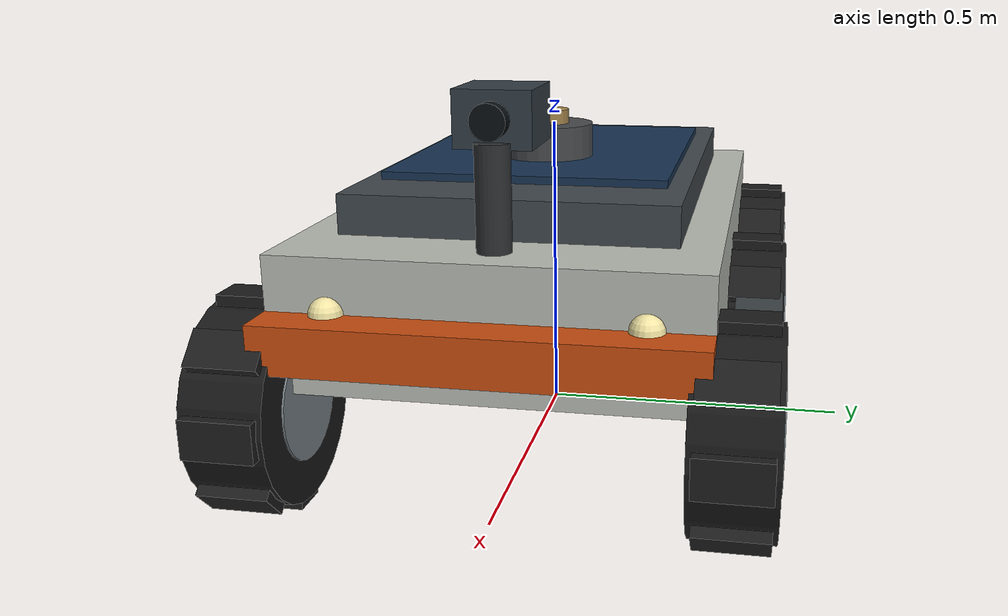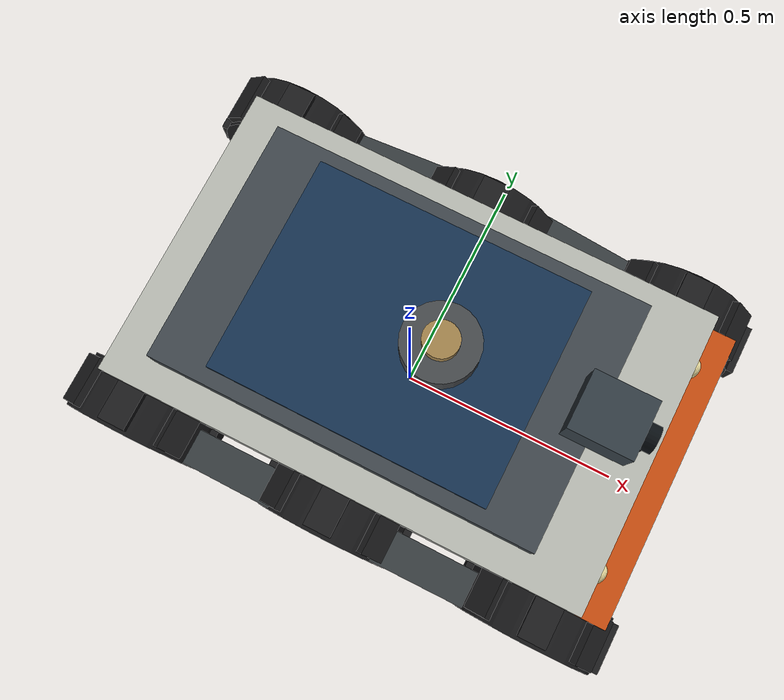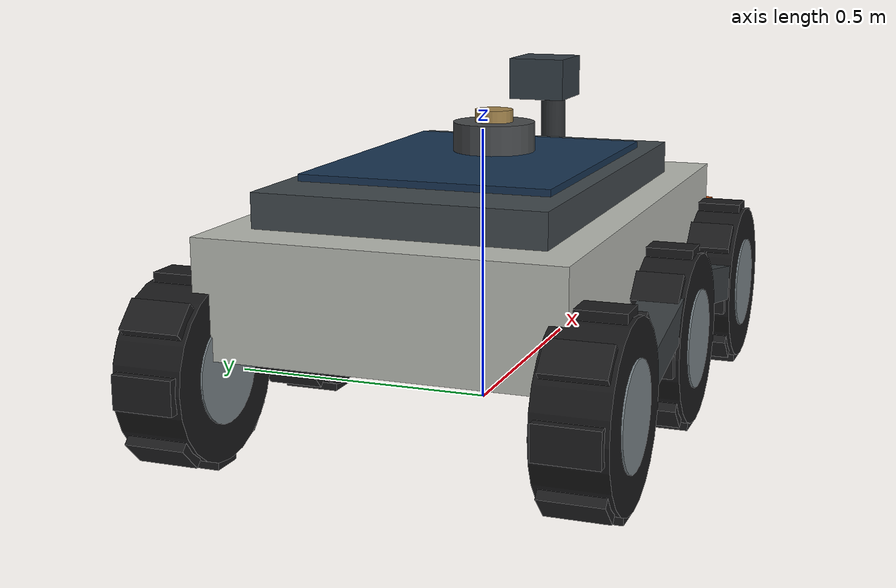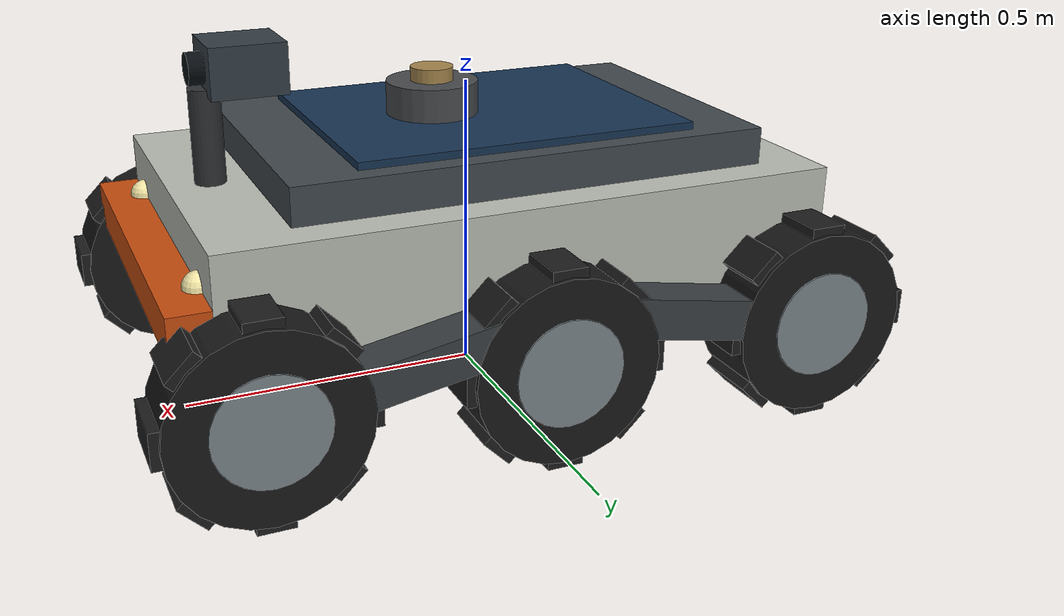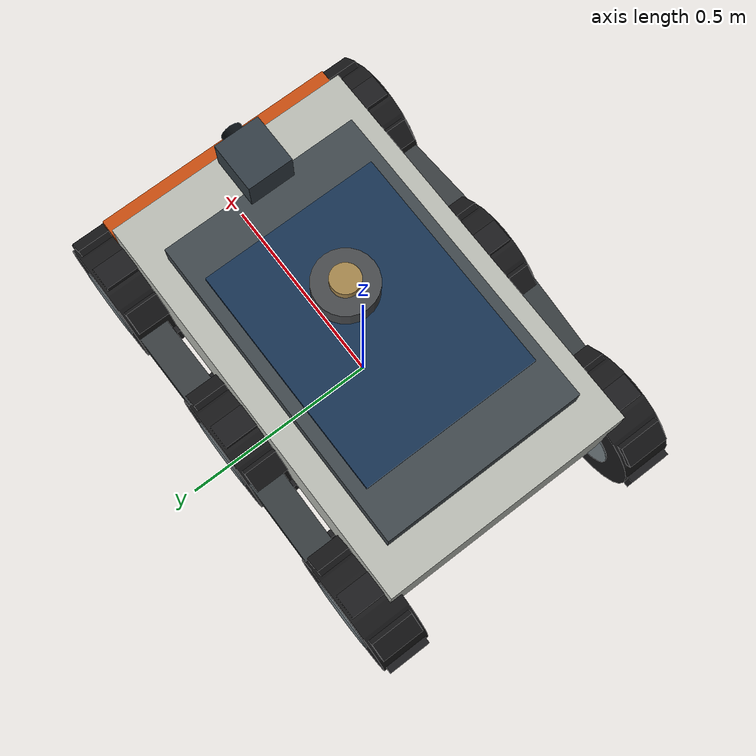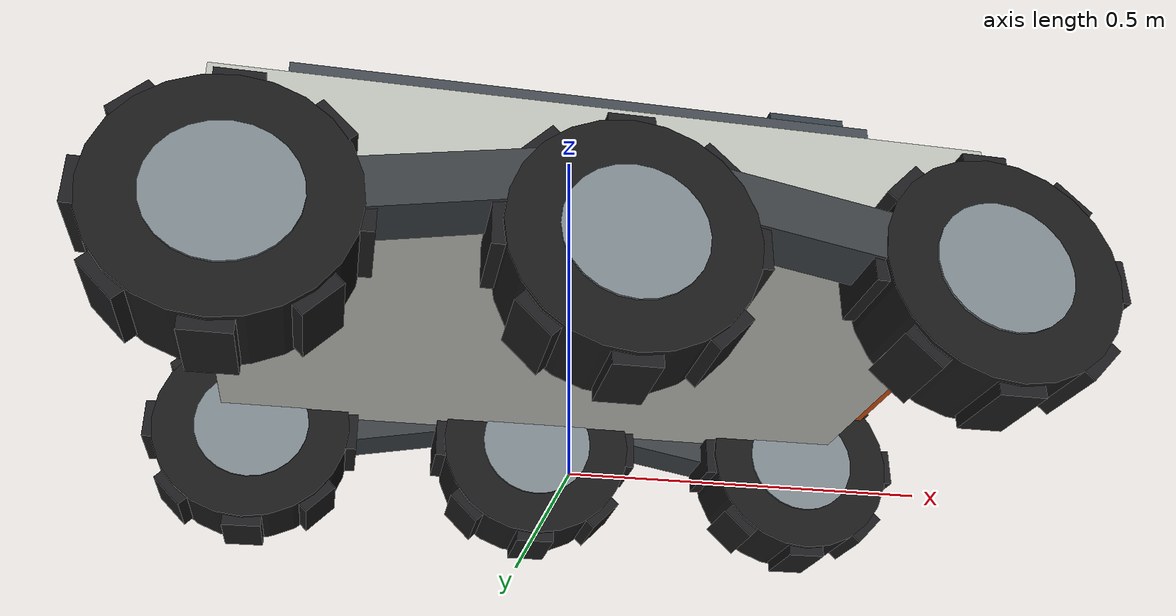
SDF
<?xml version="1.0"?>
<sdf version="1.8">
  <model name="lunabot_rover">
    <static>false</static>

    <link name="base_link">
      <!-- base_link origin is the chassis centre; base_footprint is at z = 0. -->
      <pose>0 0 0.28 0 0 0</pose>
      <inertial>
        <mass>64.8</mass>
        <inertia>
          <ixx>2.2918</ixx><ixy>0</ixy><ixz>0</ixz>
          <iyy>5.6160</iyy><iyz>0</iyz><izz>7.4760</izz>
        </inertia>
      </inertial>
      <collision name="chassis_collision">
        <geometry><box><size>1.00 0.62 0.20</size></box></geometry>
      </collision>
      <visual name="chassis_visual">
        <geometry><box><size>1.00 0.62 0.20</size></box></geometry>
        <material>
          <ambient>0.66 0.67 0.64 1</ambient>
          <diffuse>0.72 0.73 0.70 1</diffuse>
          <specular>0.12 0.12 0.12 1</specular>
        </material>
      </visual>
      <visual name="upper_deck_visual">
        <pose>-0.02 0 0.13 0 0 0</pose>
        <geometry><box><size>0.78 0.50 0.06</size></box></geometry>
        <material>
          <ambient>0.20 0.23 0.25 1</ambient>
          <diffuse>0.25 0.28 0.30 1</diffuse>
        </material>
      </visual>
      <visual name="lidar_mast_visual">
        <pose>0.06 0 0.14 0 0 0</pose>
        <geometry><cylinder><radius>0.035</radius><length>0.22</length></cylinder></geometry>
        <material>
          <ambient>0.54 0.43 0.24 1</ambient>
          <diffuse>0.64 0.52 0.30 1</diffuse>
        </material>
      </visual>
      <visual name="solar_panel_visual">
        <pose>-0.02 0 0.168 0 0 0</pose>
        <geometry><box><size>0.56 0.44 0.012</size></box></geometry>
        <material>
          <ambient>0.07 0.14 0.22 1</ambient>
          <diffuse>0.09 0.20 0.32 1</diffuse>
          <specular>0.28 0.34 0.40 1</specular>
        </material>
      </visual>
      <!-- Low-profile side rails suggest rocker-bogie hardware while the Phase 1
           chassis remains rigid; wheel groups remain manually driven. -->
      <visual name="left_front_rocker_arm_visual">
        <pose>0.225 0.36 -0.085 0 0.18 0</pose>
        <geometry><box><size>0.55 0.075 0.065</size></box></geometry>
        <material><ambient>0.17 0.19 0.20 1</ambient><diffuse>0.22 0.24 0.25 1</diffuse></material>
      </visual>
      <visual name="left_rear_bogie_arm_visual">
        <pose>-0.225 0.36 -0.085 0 -0.18 0</pose>
        <geometry><box><size>0.55 0.075 0.065</size></box></geometry>
        <material><ambient>0.17 0.19 0.20 1</ambient><diffuse>0.22 0.24 0.25 1</diffuse></material>
      </visual>
      <visual name="right_front_rocker_arm_visual">
        <pose>0.225 -0.36 -0.085 0 0.18 0</pose>
        <geometry><box><size>0.55 0.075 0.065</size></box></geometry>
        <material><ambient>0.17 0.19 0.20 1</ambient><diffuse>0.22 0.24 0.25 1</diffuse></material>
      </visual>
      <visual name="right_rear_bogie_arm_visual">
        <pose>-0.225 -0.36 -0.085 0 -0.18 0</pose>
        <geometry><box><size>0.55 0.075 0.065</size></box></geometry>
        <material><ambient>0.17 0.19 0.20 1</ambient><diffuse>0.22 0.24 0.25 1</diffuse></material>
      </visual>
      <visual name="front_bumper_visual">
        <pose>0.525 0 -0.015 0 0 0</pose>
        <geometry><box><size>0.08 0.62 0.07</size></box></geometry>
        <material>
          <ambient>0.55 0.20 0.04 1</ambient>
          <diffuse>0.78 0.30 0.06 1</diffuse>
        </material>
      </visual>
      <visual name="front_camera_mast_visual">
        <pose>0.43 0 0.14 0 0 0</pose>
        <geometry><cylinder><radius>0.025</radius><length>0.22</length></cylinder></geometry>
        <material><ambient>0.12 0.13 0.14 1</ambient><diffuse>0.18 0.19 0.20 1</diffuse></material>
      </visual>
      <visual name="left_headlamp_visual">
        <pose>0.50 0.22 0.02 0 0 0</pose>
        <geometry><sphere><radius>0.025</radius></sphere></geometry>
        <material><ambient>0.85 0.80 0.55 1</ambient><diffuse>0.95 0.90 0.65 1</diffuse></material>
      </visual>
      <visual name="right_headlamp_visual">
        <pose>0.50 -0.22 0.02 0 0 0</pose>
        <geometry><sphere><radius>0.025</radius></sphere></geometry>
        <material><ambient>0.85 0.80 0.55 1</ambient><diffuse>0.95 0.90 0.65 1</diffuse></material>
      </visual>
    </link>

    <!-- Six real wheel links: three per side; front/rear rails are visual
         rocker-bogie-inspired hardware, with all six wheels in the drive group. -->
    <link name="left_wheel">
      <pose>0.00 0.34 0.15 1.57079632679 0 0</pose>
      <inertial>
        <mass>2.5</mass>
        <inertia><ixx>0.0171</ixx><ixy>0</ixy><ixz>0</ixz><iyy>0.0171</iyy><iyz>0</iyz><izz>0.0281</izz></inertia>
      </inertial>
      <collision name="wheel_collision">
        <geometry><cylinder><radius>0.15</radius><length>0.12</length></cylinder></geometry>
        <surface><friction><ode><mu>1.5</mu><mu2>1.5</mu2><slip1>0.01</slip1><slip2>0.01</slip2></ode></friction></surface>
      </collision>
      <visual name="wheel_tire_visual">
        <geometry><cylinder><radius>0.15</radius><length>0.12</length></cylinder></geometry>
        <material><ambient>0.055 0.055 0.060 1</ambient><diffuse>0.095 0.095 0.100 1</diffuse></material>
      </visual>
      <visual name="wheel_hub_visual">
        <geometry><cylinder><radius>0.087</radius><length>0.126</length></cylinder></geometry>
        <material><ambient>0.34 0.37 0.39 1</ambient><diffuse>0.48 0.52 0.54 1</diffuse><specular>0.25 0.25 0.25 1</specular></material>
      </visual>
      <visual name="left_wheel_tread_lug_0">
        <pose>0.14500 0.00000 0 0 0 0.00000</pose>
        <geometry><box><size>0.035 0.058 0.105</size></box></geometry>
        <material><ambient>0.07 0.07 0.075 1</ambient><diffuse>0.11 0.11 0.115 1</diffuse></material>
      </visual>
      <visual name="left_wheel_tread_lug_1">
        <pose>0.10253 0.10253 0 0 0 0.78540</pose>
        <geometry><box><size>0.035 0.058 0.105</size></box></geometry>
        <material><ambient>0.07 0.07 0.075 1</ambient><diffuse>0.11 0.11 0.115 1</diffuse></material>
      </visual>
      <visual name="left_wheel_tread_lug_2">
        <pose>0.00000 0.14500 0 0 0 1.57080</pose>
        <geometry><box><size>0.035 0.058 0.105</size></box></geometry>
        <material><ambient>0.07 0.07 0.075 1</ambient><diffuse>0.11 0.11 0.115 1</diffuse></material>
      </visual>
      <visual name="left_wheel_tread_lug_3">
        <pose>-0.10253 0.10253 0 0 0 2.35619</pose>
        <geometry><box><size>0.035 0.058 0.105</size></box></geometry>
        <material><ambient>0.07 0.07 0.075 1</ambient><diffuse>0.11 0.11 0.115 1</diffuse></material>
      </visual>
      <visual name="left_wheel_tread_lug_4">
        <pose>-0.14500 0.00000 0 0 0 3.14159</pose>
        <geometry><box><size>0.035 0.058 0.105</size></box></geometry>
        <material><ambient>0.07 0.07 0.075 1</ambient><diffuse>0.11 0.11 0.115 1</diffuse></material>
      </visual>
      <visual name="left_wheel_tread_lug_5">
        <pose>-0.10253 -0.10253 0 0 0 3.92699</pose>
        <geometry><box><size>0.035 0.058 0.105</size></box></geometry>
        <material><ambient>0.07 0.07 0.075 1</ambient><diffuse>0.11 0.11 0.115 1</diffuse></material>
      </visual>
      <visual name="left_wheel_tread_lug_6">
        <pose>-0.00000 -0.14500 0 0 0 4.71239</pose>
        <geometry><box><size>0.035 0.058 0.105</size></box></geometry>
        <material><ambient>0.07 0.07 0.075 1</ambient><diffuse>0.11 0.11 0.115 1</diffuse></material>
      </visual>
      <visual name="left_wheel_tread_lug_7">
        <pose>0.10253 -0.10253 0 0 0 5.49779</pose>
        <geometry><box><size>0.035 0.058 0.105</size></box></geometry>
        <material><ambient>0.07 0.07 0.075 1</ambient><diffuse>0.11 0.11 0.115 1</diffuse></material>
      </visual>
    </link>
    <link name="left_front_wheel">
      <pose>0.45 0.34 0.15 1.57079632679 0 0</pose>
      <inertial>
        <mass>2.5</mass>
        <inertia><ixx>0.0171</ixx><ixy>0</ixy><ixz>0</ixz><iyy>0.0171</iyy><iyz>0</iyz><izz>0.0281</izz></inertia>
      </inertial>
      <collision name="wheel_collision">
        <geometry><cylinder><radius>0.15</radius><length>0.12</length></cylinder></geometry>
        <surface><friction><ode><mu>1.5</mu><mu2>1.5</mu2><slip1>0.01</slip1><slip2>0.01</slip2></ode></friction></surface>
      </collision>
      <visual name="wheel_tire_visual">
        <geometry><cylinder><radius>0.15</radius><length>0.12</length></cylinder></geometry>
        <material><ambient>0.055 0.055 0.060 1</ambient><diffuse>0.095 0.095 0.100 1</diffuse></material>
      </visual>
      <visual name="wheel_hub_visual">
        <geometry><cylinder><radius>0.087</radius><length>0.126</length></cylinder></geometry>
        <material><ambient>0.34 0.37 0.39 1</ambient><diffuse>0.48 0.52 0.54 1</diffuse><specular>0.25 0.25 0.25 1</specular></material>
      </visual>
      <visual name="left_front_wheel_tread_lug_0">
        <pose>0.14500 0.00000 0 0 0 0.00000</pose>
        <geometry><box><size>0.035 0.058 0.105</size></box></geometry>
        <material><ambient>0.07 0.07 0.075 1</ambient><diffuse>0.11 0.11 0.115 1</diffuse></material>
      </visual>
      <visual name="left_front_wheel_tread_lug_1">
        <pose>0.10253 0.10253 0 0 0 0.78540</pose>
        <geometry><box><size>0.035 0.058 0.105</size></box></geometry>
        <material><ambient>0.07 0.07 0.075 1</ambient><diffuse>0.11 0.11 0.115 1</diffuse></material>
      </visual>
      <visual name="left_front_wheel_tread_lug_2">
        <pose>0.00000 0.14500 0 0 0 1.57080</pose>
        <geometry><box><size>0.035 0.058 0.105</size></box></geometry>
        <material><ambient>0.07 0.07 0.075 1</ambient><diffuse>0.11 0.11 0.115 1</diffuse></material>
      </visual>
      <visual name="left_front_wheel_tread_lug_3">
        <pose>-0.10253 0.10253 0 0 0 2.35619</pose>
        <geometry><box><size>0.035 0.058 0.105</size></box></geometry>
        <material><ambient>0.07 0.07 0.075 1</ambient><diffuse>0.11 0.11 0.115 1</diffuse></material>
      </visual>
      <visual name="left_front_wheel_tread_lug_4">
        <pose>-0.14500 0.00000 0 0 0 3.14159</pose>
        <geometry><box><size>0.035 0.058 0.105</size></box></geometry>
        <material><ambient>0.07 0.07 0.075 1</ambient><diffuse>0.11 0.11 0.115 1</diffuse></material>
      </visual>
      <visual name="left_front_wheel_tread_lug_5">
        <pose>-0.10253 -0.10253 0 0 0 3.92699</pose>
        <geometry><box><size>0.035 0.058 0.105</size></box></geometry>
        <material><ambient>0.07 0.07 0.075 1</ambient><diffuse>0.11 0.11 0.115 1</diffuse></material>
      </visual>
      <visual name="left_front_wheel_tread_lug_6">
        <pose>-0.00000 -0.14500 0 0 0 4.71239</pose>
        <geometry><box><size>0.035 0.058 0.105</size></box></geometry>
        <material><ambient>0.07 0.07 0.075 1</ambient><diffuse>0.11 0.11 0.115 1</diffuse></material>
      </visual>
      <visual name="left_front_wheel_tread_lug_7">
        <pose>0.10253 -0.10253 0 0 0 5.49779</pose>
        <geometry><box><size>0.035 0.058 0.105</size></box></geometry>
        <material><ambient>0.07 0.07 0.075 1</ambient><diffuse>0.11 0.11 0.115 1</diffuse></material>
      </visual>
    </link>
    <link name="left_rear_wheel">
      <pose>-0.45 0.34 0.15 1.57079632679 0 0</pose>
      <inertial>
        <mass>2.5</mass>
        <inertia><ixx>0.0171</ixx><ixy>0</ixy><ixz>0</ixz><iyy>0.0171</iyy><iyz>0</iyz><izz>0.0281</izz></inertia>
      </inertial>
      <collision name="wheel_collision">
        <geometry><cylinder><radius>0.15</radius><length>0.12</length></cylinder></geometry>
        <surface><friction><ode><mu>1.5</mu><mu2>1.5</mu2><slip1>0.01</slip1><slip2>0.01</slip2></ode></friction></surface>
      </collision>
      <visual name="wheel_tire_visual">
        <geometry><cylinder><radius>0.15</radius><length>0.12</length></cylinder></geometry>
        <material><ambient>0.055 0.055 0.060 1</ambient><diffuse>0.095 0.095 0.100 1</diffuse></material>
      </visual>
      <visual name="wheel_hub_visual">
        <geometry><cylinder><radius>0.087</radius><length>0.126</length></cylinder></geometry>
        <material><ambient>0.34 0.37 0.39 1</ambient><diffuse>0.48 0.52 0.54 1</diffuse><specular>0.25 0.25 0.25 1</specular></material>
      </visual>
      <visual name="left_rear_wheel_tread_lug_0">
        <pose>0.14500 0.00000 0 0 0 0.00000</pose>
        <geometry><box><size>0.035 0.058 0.105</size></box></geometry>
        <material><ambient>0.07 0.07 0.075 1</ambient><diffuse>0.11 0.11 0.115 1</diffuse></material>
      </visual>
      <visual name="left_rear_wheel_tread_lug_1">
        <pose>0.10253 0.10253 0 0 0 0.78540</pose>
        <geometry><box><size>0.035 0.058 0.105</size></box></geometry>
        <material><ambient>0.07 0.07 0.075 1</ambient><diffuse>0.11 0.11 0.115 1</diffuse></material>
      </visual>
      <visual name="left_rear_wheel_tread_lug_2">
        <pose>0.00000 0.14500 0 0 0 1.57080</pose>
        <geometry><box><size>0.035 0.058 0.105</size></box></geometry>
        <material><ambient>0.07 0.07 0.075 1</ambient><diffuse>0.11 0.11 0.115 1</diffuse></material>
      </visual>
      <visual name="left_rear_wheel_tread_lug_3">
        <pose>-0.10253 0.10253 0 0 0 2.35619</pose>
        <geometry><box><size>0.035 0.058 0.105</size></box></geometry>
        <material><ambient>0.07 0.07 0.075 1</ambient><diffuse>0.11 0.11 0.115 1</diffuse></material>
      </visual>
      <visual name="left_rear_wheel_tread_lug_4">
        <pose>-0.14500 0.00000 0 0 0 3.14159</pose>
        <geometry><box><size>0.035 0.058 0.105</size></box></geometry>
        <material><ambient>0.07 0.07 0.075 1</ambient><diffuse>0.11 0.11 0.115 1</diffuse></material>
      </visual>
      <visual name="left_rear_wheel_tread_lug_5">
        <pose>-0.10253 -0.10253 0 0 0 3.92699</pose>
        <geometry><box><size>0.035 0.058 0.105</size></box></geometry>
        <material><ambient>0.07 0.07 0.075 1</ambient><diffuse>0.11 0.11 0.115 1</diffuse></material>
      </visual>
      <visual name="left_rear_wheel_tread_lug_6">
        <pose>-0.00000 -0.14500 0 0 0 4.71239</pose>
        <geometry><box><size>0.035 0.058 0.105</size></box></geometry>
        <material><ambient>0.07 0.07 0.075 1</ambient><diffuse>0.11 0.11 0.115 1</diffuse></material>
      </visual>
      <visual name="left_rear_wheel_tread_lug_7">
        <pose>0.10253 -0.10253 0 0 0 5.49779</pose>
        <geometry><box><size>0.035 0.058 0.105</size></box></geometry>
        <material><ambient>0.07 0.07 0.075 1</ambient><diffuse>0.11 0.11 0.115 1</diffuse></material>
      </visual>
    </link>
    <link name="right_wheel">
      <pose>0.00 -0.34 0.15 1.57079632679 0 0</pose>
      <inertial>
        <mass>2.5</mass>
        <inertia><ixx>0.0171</ixx><ixy>0</ixy><ixz>0</ixz><iyy>0.0171</iyy><iyz>0</iyz><izz>0.0281</izz></inertia>
      </inertial>
      <collision name="wheel_collision">
        <geometry><cylinder><radius>0.15</radius><length>0.12</length></cylinder></geometry>
        <surface><friction><ode><mu>1.5</mu><mu2>1.5</mu2><slip1>0.01</slip1><slip2>0.01</slip2></ode></friction></surface>
      </collision>
      <visual name="wheel_tire_visual">
        <geometry><cylinder><radius>0.15</radius><length>0.12</length></cylinder></geometry>
        <material><ambient>0.055 0.055 0.060 1</ambient><diffuse>0.095 0.095 0.100 1</diffuse></material>
      </visual>
      <visual name="wheel_hub_visual">
        <geometry><cylinder><radius>0.087</radius><length>0.126</length></cylinder></geometry>
        <material><ambient>0.34 0.37 0.39 1</ambient><diffuse>0.48 0.52 0.54 1</diffuse><specular>0.25 0.25 0.25 1</specular></material>
      </visual>
      <visual name="right_wheel_tread_lug_0">
        <pose>0.14500 0.00000 0 0 0 0.00000</pose>
        <geometry><box><size>0.035 0.058 0.105</size></box></geometry>
        <material><ambient>0.07 0.07 0.075 1</ambient><diffuse>0.11 0.11 0.115 1</diffuse></material>
      </visual>
      <visual name="right_wheel_tread_lug_1">
        <pose>0.10253 0.10253 0 0 0 0.78540</pose>
        <geometry><box><size>0.035 0.058 0.105</size></box></geometry>
        <material><ambient>0.07 0.07 0.075 1</ambient><diffuse>0.11 0.11 0.115 1</diffuse></material>
      </visual>
      <visual name="right_wheel_tread_lug_2">
        <pose>0.00000 0.14500 0 0 0 1.57080</pose>
        <geometry><box><size>0.035 0.058 0.105</size></box></geometry>
        <material><ambient>0.07 0.07 0.075 1</ambient><diffuse>0.11 0.11 0.115 1</diffuse></material>
      </visual>
      <visual name="right_wheel_tread_lug_3">
        <pose>-0.10253 0.10253 0 0 0 2.35619</pose>
        <geometry><box><size>0.035 0.058 0.105</size></box></geometry>
        <material><ambient>0.07 0.07 0.075 1</ambient><diffuse>0.11 0.11 0.115 1</diffuse></material>
      </visual>
      <visual name="right_wheel_tread_lug_4">
        <pose>-0.14500 0.00000 0 0 0 3.14159</pose>
        <geometry><box><size>0.035 0.058 0.105</size></box></geometry>
        <material><ambient>0.07 0.07 0.075 1</ambient><diffuse>0.11 0.11 0.115 1</diffuse></material>
      </visual>
      <visual name="right_wheel_tread_lug_5">
        <pose>-0.10253 -0.10253 0 0 0 3.92699</pose>
        <geometry><box><size>0.035 0.058 0.105</size></box></geometry>
        <material><ambient>0.07 0.07 0.075 1</ambient><diffuse>0.11 0.11 0.115 1</diffuse></material>
      </visual>
      <visual name="right_wheel_tread_lug_6">
        <pose>-0.00000 -0.14500 0 0 0 4.71239</pose>
        <geometry><box><size>0.035 0.058 0.105</size></box></geometry>
        <material><ambient>0.07 0.07 0.075 1</ambient><diffuse>0.11 0.11 0.115 1</diffuse></material>
      </visual>
      <visual name="right_wheel_tread_lug_7">
        <pose>0.10253 -0.10253 0 0 0 5.49779</pose>
        <geometry><box><size>0.035 0.058 0.105</size></box></geometry>
        <material><ambient>0.07 0.07 0.075 1</ambient><diffuse>0.11 0.11 0.115 1</diffuse></material>
      </visual>
    </link>
    <link name="right_front_wheel">
      <pose>0.45 -0.34 0.15 1.57079632679 0 0</pose>
      <inertial>
        <mass>2.5</mass>
        <inertia><ixx>0.0171</ixx><ixy>0</ixy><ixz>0</ixz><iyy>0.0171</iyy><iyz>0</iyz><izz>0.0281</izz></inertia>
      </inertial>
      <collision name="wheel_collision">
        <geometry><cylinder><radius>0.15</radius><length>0.12</length></cylinder></geometry>
        <surface><friction><ode><mu>1.5</mu><mu2>1.5</mu2><slip1>0.01</slip1><slip2>0.01</slip2></ode></friction></surface>
      </collision>
      <visual name="wheel_tire_visual">
        <geometry><cylinder><radius>0.15</radius><length>0.12</length></cylinder></geometry>
        <material><ambient>0.055 0.055 0.060 1</ambient><diffuse>0.095 0.095 0.100 1</diffuse></material>
      </visual>
      <visual name="wheel_hub_visual">
        <geometry><cylinder><radius>0.087</radius><length>0.126</length></cylinder></geometry>
        <material><ambient>0.34 0.37 0.39 1</ambient><diffuse>0.48 0.52 0.54 1</diffuse><specular>0.25 0.25 0.25 1</specular></material>
      </visual>
      <visual name="right_front_wheel_tread_lug_0">
        <pose>0.14500 0.00000 0 0 0 0.00000</pose>
        <geometry><box><size>0.035 0.058 0.105</size></box></geometry>
        <material><ambient>0.07 0.07 0.075 1</ambient><diffuse>0.11 0.11 0.115 1</diffuse></material>
      </visual>
      <visual name="right_front_wheel_tread_lug_1">
        <pose>0.10253 0.10253 0 0 0 0.78540</pose>
        <geometry><box><size>0.035 0.058 0.105</size></box></geometry>
        <material><ambient>0.07 0.07 0.075 1</ambient><diffuse>0.11 0.11 0.115 1</diffuse></material>
      </visual>
      <visual name="right_front_wheel_tread_lug_2">
        <pose>0.00000 0.14500 0 0 0 1.57080</pose>
        <geometry><box><size>0.035 0.058 0.105</size></box></geometry>
        <material><ambient>0.07 0.07 0.075 1</ambient><diffuse>0.11 0.11 0.115 1</diffuse></material>
      </visual>
      <visual name="right_front_wheel_tread_lug_3">
        <pose>-0.10253 0.10253 0 0 0 2.35619</pose>
        <geometry><box><size>0.035 0.058 0.105</size></box></geometry>
        <material><ambient>0.07 0.07 0.075 1</ambient><diffuse>0.11 0.11 0.115 1</diffuse></material>
      </visual>
      <visual name="right_front_wheel_tread_lug_4">
        <pose>-0.14500 0.00000 0 0 0 3.14159</pose>
        <geometry><box><size>0.035 0.058 0.105</size></box></geometry>
        <material><ambient>0.07 0.07 0.075 1</ambient><diffuse>0.11 0.11 0.115 1</diffuse></material>
      </visual>
      <visual name="right_front_wheel_tread_lug_5">
        <pose>-0.10253 -0.10253 0 0 0 3.92699</pose>
        <geometry><box><size>0.035 0.058 0.105</size></box></geometry>
        <material><ambient>0.07 0.07 0.075 1</ambient><diffuse>0.11 0.11 0.115 1</diffuse></material>
      </visual>
      <visual name="right_front_wheel_tread_lug_6">
        <pose>-0.00000 -0.14500 0 0 0 4.71239</pose>
        <geometry><box><size>0.035 0.058 0.105</size></box></geometry>
        <material><ambient>0.07 0.07 0.075 1</ambient><diffuse>0.11 0.11 0.115 1</diffuse></material>
      </visual>
      <visual name="right_front_wheel_tread_lug_7">
        <pose>0.10253 -0.10253 0 0 0 5.49779</pose>
        <geometry><box><size>0.035 0.058 0.105</size></box></geometry>
        <material><ambient>0.07 0.07 0.075 1</ambient><diffuse>0.11 0.11 0.115 1</diffuse></material>
      </visual>
    </link>
    <link name="right_rear_wheel">
      <pose>-0.45 -0.34 0.15 1.57079632679 0 0</pose>
      <inertial>
        <mass>2.5</mass>
        <inertia><ixx>0.0171</ixx><ixy>0</ixy><ixz>0</ixz><iyy>0.0171</iyy><iyz>0</iyz><izz>0.0281</izz></inertia>
      </inertial>
      <collision name="wheel_collision">
        <geometry><cylinder><radius>0.15</radius><length>0.12</length></cylinder></geometry>
        <surface><friction><ode><mu>1.5</mu><mu2>1.5</mu2><slip1>0.01</slip1><slip2>0.01</slip2></ode></friction></surface>
      </collision>
      <visual name="wheel_tire_visual">
        <geometry><cylinder><radius>0.15</radius><length>0.12</length></cylinder></geometry>
        <material><ambient>0.055 0.055 0.060 1</ambient><diffuse>0.095 0.095 0.100 1</diffuse></material>
      </visual>
      <visual name="wheel_hub_visual">
        <geometry><cylinder><radius>0.087</radius><length>0.126</length></cylinder></geometry>
        <material><ambient>0.34 0.37 0.39 1</ambient><diffuse>0.48 0.52 0.54 1</diffuse><specular>0.25 0.25 0.25 1</specular></material>
      </visual>
      <visual name="right_rear_wheel_tread_lug_0">
        <pose>0.14500 0.00000 0 0 0 0.00000</pose>
        <geometry><box><size>0.035 0.058 0.105</size></box></geometry>
        <material><ambient>0.07 0.07 0.075 1</ambient><diffuse>0.11 0.11 0.115 1</diffuse></material>
      </visual>
      <visual name="right_rear_wheel_tread_lug_1">
        <pose>0.10253 0.10253 0 0 0 0.78540</pose>
        <geometry><box><size>0.035 0.058 0.105</size></box></geometry>
        <material><ambient>0.07 0.07 0.075 1</ambient><diffuse>0.11 0.11 0.115 1</diffuse></material>
      </visual>
      <visual name="right_rear_wheel_tread_lug_2">
        <pose>0.00000 0.14500 0 0 0 1.57080</pose>
        <geometry><box><size>0.035 0.058 0.105</size></box></geometry>
        <material><ambient>0.07 0.07 0.075 1</ambient><diffuse>0.11 0.11 0.115 1</diffuse></material>
      </visual>
      <visual name="right_rear_wheel_tread_lug_3">
        <pose>-0.10253 0.10253 0 0 0 2.35619</pose>
        <geometry><box><size>0.035 0.058 0.105</size></box></geometry>
        <material><ambient>0.07 0.07 0.075 1</ambient><diffuse>0.11 0.11 0.115 1</diffuse></material>
      </visual>
      <visual name="right_rear_wheel_tread_lug_4">
        <pose>-0.14500 0.00000 0 0 0 3.14159</pose>
        <geometry><box><size>0.035 0.058 0.105</size></box></geometry>
        <material><ambient>0.07 0.07 0.075 1</ambient><diffuse>0.11 0.11 0.115 1</diffuse></material>
      </visual>
      <visual name="right_rear_wheel_tread_lug_5">
        <pose>-0.10253 -0.10253 0 0 0 3.92699</pose>
        <geometry><box><size>0.035 0.058 0.105</size></box></geometry>
        <material><ambient>0.07 0.07 0.075 1</ambient><diffuse>0.11 0.11 0.115 1</diffuse></material>
      </visual>
      <visual name="right_rear_wheel_tread_lug_6">
        <pose>-0.00000 -0.14500 0 0 0 4.71239</pose>
        <geometry><box><size>0.035 0.058 0.105</size></box></geometry>
        <material><ambient>0.07 0.07 0.075 1</ambient><diffuse>0.11 0.11 0.115 1</diffuse></material>
      </visual>
      <visual name="right_rear_wheel_tread_lug_7">
        <pose>0.10253 -0.10253 0 0 0 5.49779</pose>
        <geometry><box><size>0.035 0.058 0.105</size></box></geometry>
        <material><ambient>0.07 0.07 0.075 1</ambient><diffuse>0.11 0.11 0.115 1</diffuse></material>
      </visual>
    </link>
    <joint name="left_wheel_joint" type="revolute">
      <parent>base_link</parent><child>left_wheel</child>
      <axis>
        <xyz>0 0 1</xyz>
        <limit><lower>-1.0e16</lower><upper>1.0e16</upper><effort>120</effort><velocity>25</velocity></limit>
        <dynamics><damping>0.02</damping><friction>0.0</friction></dynamics>
      </axis>
    </joint>
    <joint name="left_front_wheel_joint" type="revolute">
      <parent>base_link</parent><child>left_front_wheel</child>
      <axis>
        <xyz>0 0 1</xyz>
        <limit><lower>-1.0e16</lower><upper>1.0e16</upper><effort>120</effort><velocity>25</velocity></limit>
        <dynamics><damping>0.02</damping><friction>0.0</friction></dynamics>
      </axis>
    </joint>
    <joint name="left_rear_wheel_joint" type="revolute">
      <parent>base_link</parent><child>left_rear_wheel</child>
      <axis>
        <xyz>0 0 1</xyz>
        <limit><lower>-1.0e16</lower><upper>1.0e16</upper><effort>120</effort><velocity>25</velocity></limit>
        <dynamics><damping>0.02</damping><friction>0.0</friction></dynamics>
      </axis>
    </joint>
    <joint name="right_wheel_joint" type="revolute">
      <parent>base_link</parent><child>right_wheel</child>
      <axis>
        <xyz>0 0 1</xyz>
        <limit><lower>-1.0e16</lower><upper>1.0e16</upper><effort>120</effort><velocity>25</velocity></limit>
        <dynamics><damping>0.02</damping><friction>0.0</friction></dynamics>
      </axis>
    </joint>
    <joint name="right_front_wheel_joint" type="revolute">
      <parent>base_link</parent><child>right_front_wheel</child>
      <axis>
        <xyz>0 0 1</xyz>
        <limit><lower>-1.0e16</lower><upper>1.0e16</upper><effort>120</effort><velocity>25</velocity></limit>
        <dynamics><damping>0.02</damping><friction>0.0</friction></dynamics>
      </axis>
    </joint>
    <joint name="right_rear_wheel_joint" type="revolute">
      <parent>base_link</parent><child>right_rear_wheel</child>
      <axis>
        <xyz>0 0 1</xyz>
        <limit><lower>-1.0e16</lower><upper>1.0e16</upper><effort>120</effort><velocity>25</velocity></limit>
        <dynamics><damping>0.02</damping><friction>0.0</friction></dynamics>
      </axis>
    </joint>

    <!-- The camera looks along local +X; ROS image headers use the optical frame. -->
    <link name="camera_link">
      <pose relative_to="base_link">0.43 0 0.28 0 0 0</pose>
      <inertial>
        <mass>0.12</mass>
        <inertia><ixx>0.001</ixx><ixy>0</ixy><ixz>0</ixz><iyy>0.001</iyy><iyz>0</iyz><izz>0.001</izz></inertia>
      </inertial>
      <visual name="camera_housing_visual">
        <!-- Keep the housing behind the optical centre so it cannot block the image. -->
        <pose>-0.06 0 0 0 0 0</pose>
        <geometry><box><size>0.12 0.11 0.08</size></box></geometry>
        <material>
          <ambient>0.16 0.19 0.22 1</ambient>
          <diffuse>0.20 0.24 0.27 1</diffuse>
        </material>
      </visual>
      <visual name="camera_lens_visual">
        <pose>0.012 0 0 0 1.57079632679 0</pose>
        <geometry><cylinder><radius>0.025</radius><length>0.025</length></cylinder></geometry>
        <material><ambient>0.025 0.035 0.045 1</ambient><diffuse>0.035 0.055 0.070 1</diffuse></material>
      </visual>
      <sensor name="front_camera" type="camera">
        <pose>0 0 0 0 0 0</pose>
        <always_on>true</always_on>
        <visualize>true</visualize>
        <update_rate>20</update_rate>
        <topic>/camera/image_raw</topic>
        <camera>
          <horizontal_fov>1.04719755</horizontal_fov>
          <image><width>640</width><height>480</height><format>R8G8B8</format></image>
          <clip><near>0.05</near><far>30.0</far></clip>
          <optical_frame_id>camera_optical_frame</optical_frame_id>
        </camera>
      </sensor>
    </link>
    <joint name="camera_mount_joint" type="fixed">
      <parent>base_link</parent><child>camera_link</child>
    </joint>

    <!-- Horizontal 360-degree range scan, centred at rover-forward +X. -->
    <link name="lidar_link">
      <pose relative_to="base_link">0.06 0 0.20 0 0 0</pose>
      <inertial>
        <mass>0.10</mass>
        <inertia><ixx>0.0005</ixx><ixy>0</ixy><ixz>0</ixz><iyy>0.0005</iyy><iyz>0</iyz><izz>0.0005</izz></inertia>
      </inertial>
      <visual name="lidar_housing_visual">
        <geometry><cylinder><radius>0.075</radius><length>0.055</length></cylinder></geometry>
        <material>
          <ambient>0.23 0.24 0.25 1</ambient>
          <diffuse>0.28 0.29 0.30 1</diffuse>
        </material>
      </visual>
      <sensor name="front_lidar" type="gpu_lidar">
        <pose>0 0 0 0 0 0</pose>
        <always_on>true</always_on>
        <visualize>true</visualize>
        <update_rate>10</update_rate>
        <topic>/scan</topic>
        <ray>
          <scan>
            <horizontal>
              <samples>720</samples><resolution>1</resolution>
              <min_angle>-3.14159265</min_angle><max_angle>3.14159265</max_angle>
            </horizontal>
            <vertical>
              <samples>1</samples><resolution>1</resolution>
              <min_angle>0</min_angle><max_angle>0</max_angle>
            </vertical>
          </scan>
          <range>
            <min>0.12</min><max>15.0</max><resolution>0.01</resolution>
          </range>
          <noise><type>gaussian</type><mean>0.0</mean><stddev>0.005</stddev></noise>
        </ray>
      </sensor>
    </link>
    <joint name="lidar_mount_joint" type="fixed">
      <parent>base_link</parent><child>lidar_link</child>
    </joint>

    <plugin filename="ignition-gazebo-diff-drive-system" name="gz::sim::systems::DiffDrive">
      <left_joint>left_wheel_joint</left_joint>
      <left_joint>left_front_wheel_joint</left_joint>
      <left_joint>left_rear_wheel_joint</left_joint>
      <right_joint>right_wheel_joint</right_joint>
      <right_joint>right_front_wheel_joint</right_joint>
      <right_joint>right_rear_wheel_joint</right_joint>
      <wheel_separation>0.68</wheel_separation>
      <wheel_radius>0.15</wheel_radius>
      <topic>/cmd_vel_sim</topic>
      <odom_topic>/odom</odom_topic>
      <tf_topic>/tf</tf_topic>
      <frame_id>odom</frame_id>
      <child_frame_id>base_footprint</child_frame_id>
      <odom_publish_frequency>30</odom_publish_frequency>
      <min_linear_velocity>-0.35</min_linear_velocity>
      <max_linear_velocity>0.35</max_linear_velocity>
      <min_angular_velocity>-0.80</min_angular_velocity>
      <max_angular_velocity>0.80</max_angular_velocity>
      <min_linear_acceleration>-0.40</min_linear_acceleration>
      <max_linear_acceleration>0.40</max_linear_acceleration>
      <min_angular_acceleration>-0.90</min_angular_acceleration>
      <max_angular_acceleration>0.90</max_angular_acceleration>
    </plugin>
  </model>
</sdf>
